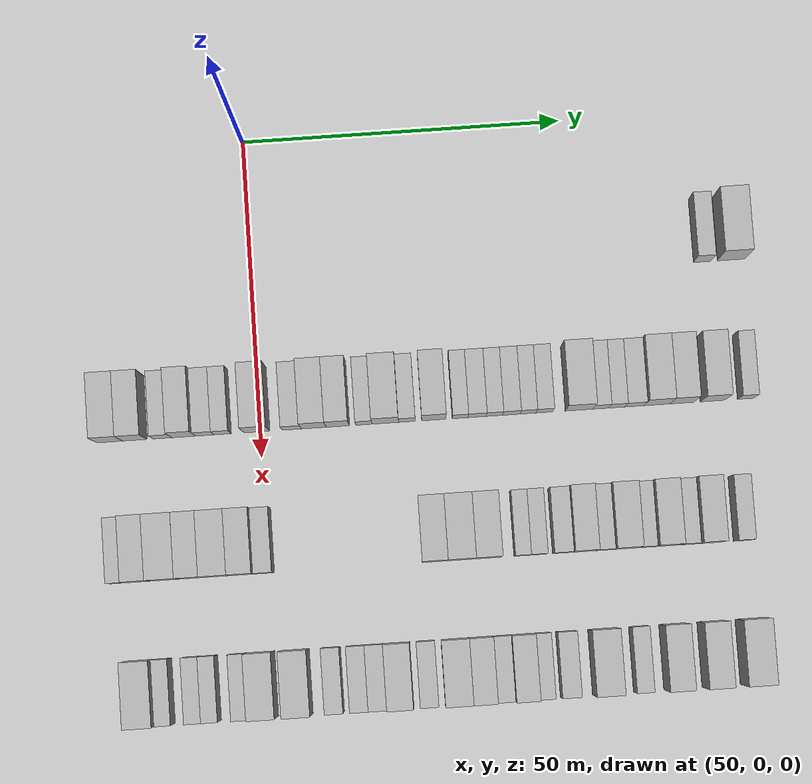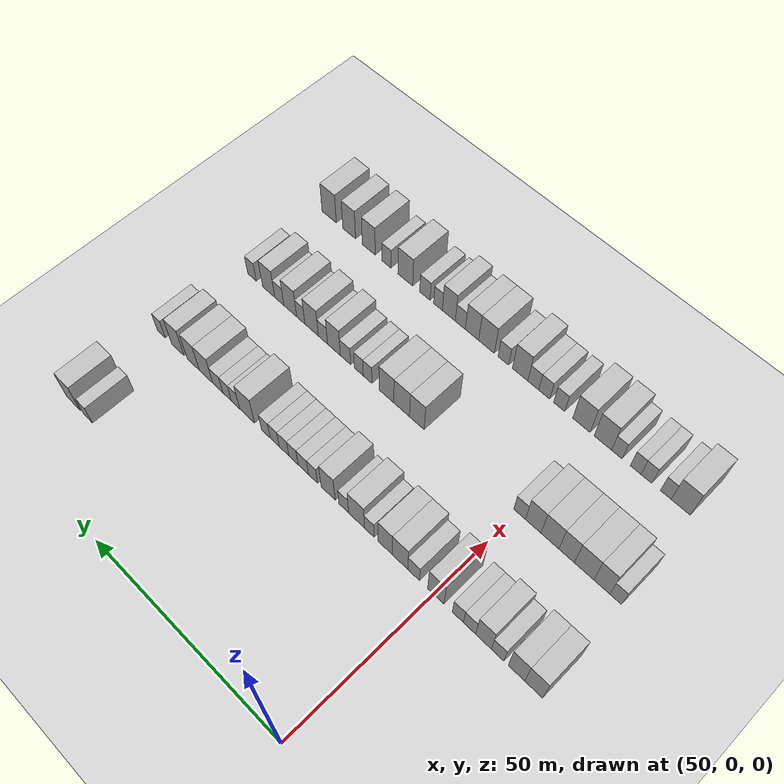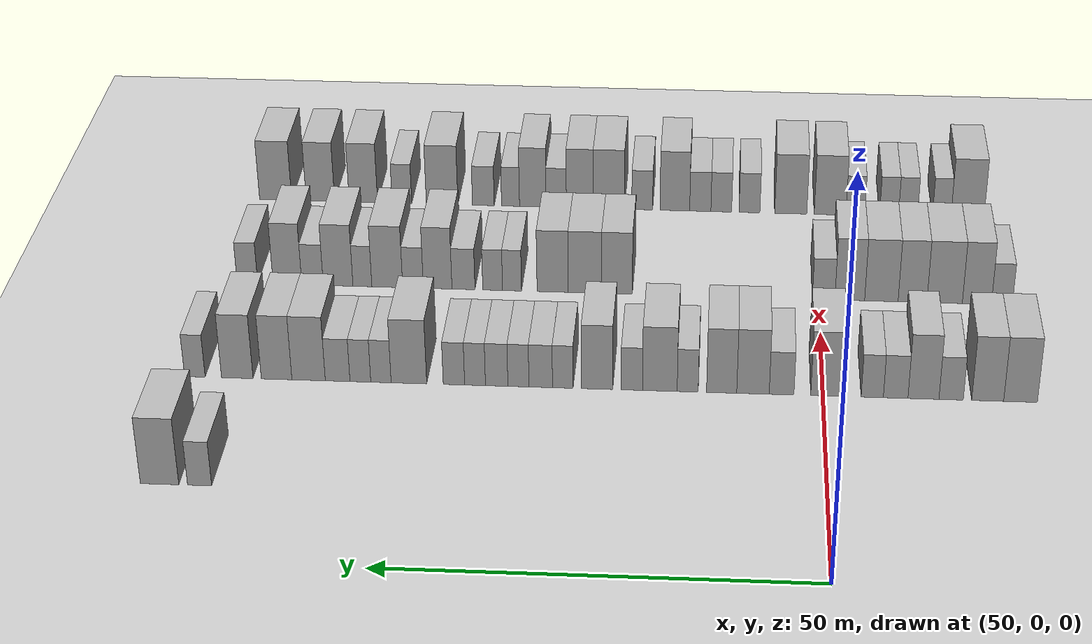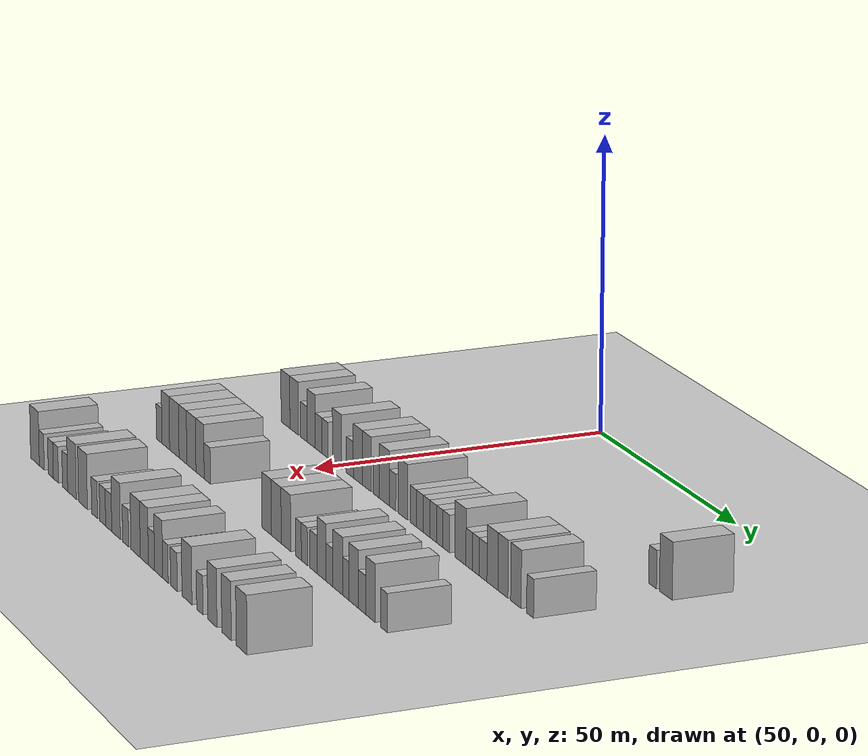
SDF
<sdf version="1.6">
 <world name="default">
  <include>
   <name>ground_plane_2</name>
   <uri>model://HANNAS_ground_plane</uri>
   <pose>100 0 0  0 0 0</pose>
  </include>
  <model name="building_483">
   <static>1</static>
   <pose>69.0000 70.8606 0 0.000000 0.000000 0.000000</pose>
   <link name="link">
    <pose>0 0 3.00 0 0 0</pose>
    <collision name="collision"><geometry><box><size>10.0000 2.7540 6.0000</size></box></geometry></collision>
    <visual name="visual">
     <cast_shadows>0</cast_shadows>
     <geometry><box><size>10.0000 2.7540 6.0000</size></box></geometry>
     <material>
      <script>
       <uri>model://HANNAS_wall/materials/scripts</uri>
       <uri>model://HANNAS_wall/materials/textures</uri>
       <name>vrc/HANNAS_wall</name>
      </script>
     </material>
    </visual>
   </link>
  </model>
  <model name="building_484">
   <static>1</static>
   <pose>69.0000 75.4349 0 0.000000 0.000000 0.000000</pose>
   <link name="link">
    <pose>0 0 4.50 0 0 0</pose>
    <collision name="collision"><geometry><box><size>10.0000 4.3946 9.0000</size></box></geometry></collision>
    <visual name="visual">
     <cast_shadows>0</cast_shadows>
     <geometry><box><size>10.0000 4.3946 9.0000</size></box></geometry>
     <material>
      <script>
       <uri>model://HANNAS_wall/materials/scripts</uri>
       <uri>model://HANNAS_wall/materials/textures</uri>
       <name>vrc/HANNAS_wall</name>
      </script>
     </material>
    </visual>
   </link>
  </model>
  <model name="building_642">
   <static>1</static>
   <pose>91.0000 -23.3865 0 0.000000 0.000000 0.000000</pose>
   <link name="link">
    <pose>0 0 4.50 0 0 0</pose>
    <collision name="collision"><geometry><box><size>10.0000 3.9844 9.0000</size></box></geometry></collision>
    <visual name="visual">
     <cast_shadows>0</cast_shadows>
     <geometry><box><size>10.0000 3.9844 9.0000</size></box></geometry>
     <material>
      <script>
       <uri>model://HANNAS_wall/materials/scripts</uri>
       <uri>model://HANNAS_wall/materials/textures</uri>
       <name>vrc/HANNAS_wall</name>
      </script>
     </material>
    </visual>
   </link>
  </model>
  <model name="building_643">
   <static>1</static>
   <pose>91.0000 -19.5010 0 0.000000 0.000000 0.000000</pose>
   <link name="link">
    <pose>0 0 4.50 0 0 0</pose>
    <collision name="collision"><geometry><box><size>10.0000 3.7867 9.0000</size></box></geometry></collision>
    <visual name="visual">
     <cast_shadows>0</cast_shadows>
     <geometry><box><size>10.0000 3.7867 9.0000</size></box></geometry>
     <material>
      <script>
       <uri>model://HANNAS_wall/materials/scripts</uri>
       <uri>model://HANNAS_wall/materials/textures</uri>
       <name>vrc/HANNAS_wall</name>
      </script>
     </material>
    </visual>
   </link>
  </model>
  <model name="building_644">
   <static>1</static>
   <pose>91.0000 -15.1635 0 0.000000 0.000000 0.000000</pose>
   <link name="link">
    <pose>0 0 3.00 0 0 0</pose>
    <collision name="collision"><geometry><box><size>10.0000 2.8882 6.0000</size></box></geometry></collision>
    <visual name="visual">
     <cast_shadows>0</cast_shadows>
     <geometry><box><size>10.0000 2.8882 6.0000</size></box></geometry>
     <material>
      <script>
       <uri>model://HANNAS_wall/materials/scripts</uri>
       <uri>model://HANNAS_wall/materials/textures</uri>
       <name>vrc/HANNAS_wall</name>
      </script>
     </material>
    </visual>
   </link>
  </model>
  <model name="building_645">
   <static>1</static>
   <pose>91.0000 -11.8799 0 0.000000 0.000000 0.000000</pose>
   <link name="link">
    <pose>0 0 4.50 0 0 0</pose>
    <collision name="collision"><geometry><box><size>10.0000 3.6791 9.0000</size></box></geometry></collision>
    <visual name="visual">
     <cast_shadows>0</cast_shadows>
     <geometry><box><size>10.0000 3.6791 9.0000</size></box></geometry>
     <material>
      <script>
       <uri>model://HANNAS_wall/materials/scripts</uri>
       <uri>model://HANNAS_wall/materials/textures</uri>
       <name>vrc/HANNAS_wall</name>
      </script>
     </material>
    </visual>
   </link>
  </model>
  <model name="building_646">
   <static>1</static>
   <pose>91.0000 -8.5792 0 0.000000 0.000000 0.000000</pose>
   <link name="link">
    <pose>0 0 3.00 0 0 0</pose>
    <collision name="collision"><geometry><box><size>10.0000 2.9222 6.0000</size></box></geometry></collision>
    <visual name="visual">
     <cast_shadows>0</cast_shadows>
     <geometry><box><size>10.0000 2.9222 6.0000</size></box></geometry>
     <material>
      <script>
       <uri>model://HANNAS_wall/materials/scripts</uri>
       <uri>model://HANNAS_wall/materials/textures</uri>
       <name>vrc/HANNAS_wall</name>
      </script>
     </material>
    </visual>
   </link>
  </model>
  <model name="building_647">
   <static>1</static>
   <pose>91.0000 -5.7963 0 0.000000 0.000000 0.000000</pose>
   <link name="link">
    <pose>0 0 3.00 0 0 0</pose>
    <collision name="collision"><geometry><box><size>10.0000 2.6437 6.0000</size></box></geometry></collision>
    <visual name="visual">
     <cast_shadows>0</cast_shadows>
     <geometry><box><size>10.0000 2.6437 6.0000</size></box></geometry>
     <material>
      <script>
       <uri>model://HANNAS_wall/materials/scripts</uri>
       <uri>model://HANNAS_wall/materials/textures</uri>
       <name>vrc/HANNAS_wall</name>
      </script>
     </material>
    </visual>
   </link>
  </model>
  <model name="building_648">
   <static>1</static>
   <pose>91.0000 -0.4701 0 0.000000 0.000000 0.000000</pose>
   <link name="link">
    <pose>0 0 4.50 0 0 0</pose>
    <collision name="collision"><geometry><box><size>10.0000 4.0087 9.0000</size></box></geometry></collision>
    <visual name="visual">
     <cast_shadows>0</cast_shadows>
     <geometry><box><size>10.0000 4.0087 9.0000</size></box></geometry>
     <material>
      <script>
       <uri>model://HANNAS_wall/materials/scripts</uri>
       <uri>model://HANNAS_wall/materials/textures</uri>
       <name>vrc/HANNAS_wall</name>
      </script>
     </material>
    </visual>
   </link>
  </model>
  <model name="building_649">
   <static>1</static>
   <pose>91.0000 5.0111 0 0.000000 0.000000 0.000000</pose>
   <link name="link">
    <pose>0 0 3.00 0 0 0</pose>
    <collision name="collision"><geometry><box><size>10.0000 2.9537 6.0000</size></box></geometry></collision>
    <visual name="visual">
     <cast_shadows>0</cast_shadows>
     <geometry><box><size>10.0000 2.9537 6.0000</size></box></geometry>
     <material>
      <script>
       <uri>model://HANNAS_wall/materials/scripts</uri>
       <uri>model://HANNAS_wall/materials/textures</uri>
       <name>vrc/HANNAS_wall</name>
      </script>
     </material>
    </visual>
   </link>
  </model>
  <model name="building_650">
   <static>1</static>
   <pose>91.0000 8.4296 0 0.000000 0.000000 0.000000</pose>
   <link name="link">
    <pose>0 0 4.50 0 0 0</pose>
    <collision name="collision"><geometry><box><size>10.0000 3.8834 9.0000</size></box></geometry></collision>
    <visual name="visual">
     <cast_shadows>0</cast_shadows>
     <geometry><box><size>10.0000 3.8834 9.0000</size></box></geometry>
     <material>
      <script>
       <uri>model://HANNAS_wall/materials/scripts</uri>
       <uri>model://HANNAS_wall/materials/textures</uri>
       <name>vrc/HANNAS_wall</name>
      </script>
     </material>
    </visual>
   </link>
  </model>
  <model name="building_651">
   <static>1</static>
   <pose>91.0000 12.1762 0 0.000000 0.000000 0.000000</pose>
   <link name="link">
    <pose>0 0 4.50 0 0 0</pose>
    <collision name="collision"><geometry><box><size>10.0000 3.6097 9.0000</size></box></geometry></collision>
    <visual name="visual">
     <cast_shadows>0</cast_shadows>
     <geometry><box><size>10.0000 3.6097 9.0000</size></box></geometry>
     <material>
      <script>
       <uri>model://HANNAS_wall/materials/scripts</uri>
       <uri>model://HANNAS_wall/materials/textures</uri>
       <name>vrc/HANNAS_wall</name>
      </script>
     </material>
    </visual>
   </link>
  </model>
  <model name="building_652">
   <static>1</static>
   <pose>91.0000 16.2401 0 0.000000 0.000000 0.000000</pose>
   <link name="link">
    <pose>0 0 3.00 0 0 0</pose>
    <collision name="collision"><geometry><box><size>10.0000 2.5182 6.0000</size></box></geometry></collision>
    <visual name="visual">
     <cast_shadows>0</cast_shadows>
     <geometry><box><size>10.0000 2.5182 6.0000</size></box></geometry>
     <material>
      <script>
       <uri>model://HANNAS_wall/materials/scripts</uri>
       <uri>model://HANNAS_wall/materials/textures</uri>
       <name>vrc/HANNAS_wall</name>
      </script>
     </material>
    </visual>
   </link>
  </model>
  <model name="building_653">
   <static>1</static>
   <pose>91.0000 19.5769 0 0.000000 0.000000 0.000000</pose>
   <link name="link">
    <pose>0 0 4.50 0 0 0</pose>
    <collision name="collision"><geometry><box><size>10.0000 4.1554 9.0000</size></box></geometry></collision>
    <visual name="visual">
     <cast_shadows>0</cast_shadows>
     <geometry><box><size>10.0000 4.1554 9.0000</size></box></geometry>
     <material>
      <script>
       <uri>model://HANNAS_wall/materials/scripts</uri>
       <uri>model://HANNAS_wall/materials/textures</uri>
       <name>vrc/HANNAS_wall</name>
      </script>
     </material>
    </visual>
   </link>
  </model>
  <model name="building_654">
   <static>1</static>
   <pose>91.0000 22.9436 0 0.000000 0.000000 0.000000</pose>
   <link name="link">
    <pose>0 0 3.00 0 0 0</pose>
    <collision name="collision"><geometry><box><size>10.0000 2.5779 6.0000</size></box></geometry></collision>
    <visual name="visual">
     <cast_shadows>0</cast_shadows>
     <geometry><box><size>10.0000 2.5779 6.0000</size></box></geometry>
     <material>
      <script>
       <uri>model://HANNAS_wall/materials/scripts</uri>
       <uri>model://HANNAS_wall/materials/textures</uri>
       <name>vrc/HANNAS_wall</name>
      </script>
     </material>
    </visual>
   </link>
  </model>
  <model name="building_655">
   <static>1</static>
   <pose>91.0000 27.1180 0 0.000000 0.000000 0.000000</pose>
   <link name="link">
    <pose>0 0 4.50 0 0 0</pose>
    <collision name="collision"><geometry><box><size>10.0000 3.7708 9.0000</size></box></geometry></collision>
    <visual name="visual">
     <cast_shadows>0</cast_shadows>
     <geometry><box><size>10.0000 3.7708 9.0000</size></box></geometry>
     <material>
      <script>
       <uri>model://HANNAS_wall/materials/scripts</uri>
       <uri>model://HANNAS_wall/materials/textures</uri>
       <name>vrc/HANNAS_wall</name>
      </script>
     </material>
    </visual>
   </link>
  </model>
  <model name="building_656">
   <static>1</static>
   <pose>91.0000 31.2391 0 0.000000 0.000000 0.000000</pose>
   <link name="link">
    <pose>0 0 3.00 0 0 0</pose>
    <collision name="collision"><geometry><box><size>10.0000 2.4715 6.0000</size></box></geometry></collision>
    <visual name="visual">
     <cast_shadows>0</cast_shadows>
     <geometry><box><size>10.0000 2.4715 6.0000</size></box></geometry>
     <material>
      <script>
       <uri>model://HANNAS_wall/materials/scripts</uri>
       <uri>model://HANNAS_wall/materials/textures</uri>
       <name>vrc/HANNAS_wall</name>
      </script>
     </material>
    </visual>
   </link>
  </model>
  <model name="building_657">
   <static>1</static>
   <pose>91.0000 33.8924 0 0.000000 0.000000 0.000000</pose>
   <link name="link">
    <pose>0 0 3.00 0 0 0</pose>
    <collision name="collision"><geometry><box><size>10.0000 2.8350 6.0000</size></box></geometry></collision>
    <visual name="visual">
     <cast_shadows>0</cast_shadows>
     <geometry><box><size>10.0000 2.8350 6.0000</size></box></geometry>
     <material>
      <script>
       <uri>model://HANNAS_wall/materials/scripts</uri>
       <uri>model://HANNAS_wall/materials/textures</uri>
       <name>vrc/HANNAS_wall</name>
      </script>
     </material>
    </visual>
   </link>
  </model>
  <model name="building_658">
   <static>1</static>
   <pose>91.0000 36.5819 0 0.000000 0.000000 0.000000</pose>
   <link name="link">
    <pose>0 0 3.00 0 0 0</pose>
    <collision name="collision"><geometry><box><size>10.0000 2.5441 6.0000</size></box></geometry></collision>
    <visual name="visual">
     <cast_shadows>0</cast_shadows>
     <geometry><box><size>10.0000 2.5441 6.0000</size></box></geometry>
     <material>
      <script>
       <uri>model://HANNAS_wall/materials/scripts</uri>
       <uri>model://HANNAS_wall/materials/textures</uri>
       <name>vrc/HANNAS_wall</name>
      </script>
     </material>
    </visual>
   </link>
  </model>
  <model name="building_659">
   <static>1</static>
   <pose>91.0000 39.2064 0 0.000000 0.000000 0.000000</pose>
   <link name="link">
    <pose>0 0 3.00 0 0 0</pose>
    <collision name="collision"><geometry><box><size>10.0000 2.7049 6.0000</size></box></geometry></collision>
    <visual name="visual">
     <cast_shadows>0</cast_shadows>
     <geometry><box><size>10.0000 2.7049 6.0000</size></box></geometry>
     <material>
      <script>
       <uri>model://HANNAS_wall/materials/scripts</uri>
       <uri>model://HANNAS_wall/materials/textures</uri>
       <name>vrc/HANNAS_wall</name>
      </script>
     </material>
    </visual>
   </link>
  </model>
  <model name="building_660">
   <static>1</static>
   <pose>91.0000 41.8150 0 0.000000 0.000000 0.000000</pose>
   <link name="link">
    <pose>0 0 3.00 0 0 0</pose>
    <collision name="collision"><geometry><box><size>10.0000 2.5125 6.0000</size></box></geometry></collision>
    <visual name="visual">
     <cast_shadows>0</cast_shadows>
     <geometry><box><size>10.0000 2.5125 6.0000</size></box></geometry>
     <material>
      <script>
       <uri>model://HANNAS_wall/materials/scripts</uri>
       <uri>model://HANNAS_wall/materials/textures</uri>
       <name>vrc/HANNAS_wall</name>
      </script>
     </material>
    </visual>
   </link>
  </model>
  <model name="building_661">
   <static>1</static>
   <pose>91.0000 44.3664 0 0.000000 0.000000 0.000000</pose>
   <link name="link">
    <pose>0 0 3.00 0 0 0</pose>
    <collision name="collision"><geometry><box><size>10.0000 2.5903 6.0000</size></box></geometry></collision>
    <visual name="visual">
     <cast_shadows>0</cast_shadows>
     <geometry><box><size>10.0000 2.5903 6.0000</size></box></geometry>
     <material>
      <script>
       <uri>model://HANNAS_wall/materials/scripts</uri>
       <uri>model://HANNAS_wall/materials/textures</uri>
       <name>vrc/HANNAS_wall</name>
      </script>
     </material>
    </visual>
   </link>
  </model>
  <model name="building_662">
   <static>1</static>
   <pose>91.0000 49.8170 0 0.000000 0.000000 0.000000</pose>
   <link name="link">
    <pose>0 0 4.50 0 0 0</pose>
    <collision name="collision"><geometry><box><size>10.0000 4.3110 9.0000</size></box></geometry></collision>
    <visual name="visual">
     <cast_shadows>0</cast_shadows>
     <geometry><box><size>10.0000 4.3110 9.0000</size></box></geometry>
     <material>
      <script>
       <uri>model://HANNAS_wall/materials/scripts</uri>
       <uri>model://HANNAS_wall/materials/textures</uri>
       <name>vrc/HANNAS_wall</name>
      </script>
     </material>
    </visual>
   </link>
  </model>
  <model name="building_663">
   <static>1</static>
   <pose>91.0000 53.2085 0 0.000000 0.000000 0.000000</pose>
   <link name="link">
    <pose>0 0 3.00 0 0 0</pose>
    <collision name="collision"><geometry><box><size>10.0000 2.4719 6.0000</size></box></geometry></collision>
    <visual name="visual">
     <cast_shadows>0</cast_shadows>
     <geometry><box><size>10.0000 2.4719 6.0000</size></box></geometry>
     <material>
      <script>
       <uri>model://HANNAS_wall/materials/scripts</uri>
       <uri>model://HANNAS_wall/materials/textures</uri>
       <name>vrc/HANNAS_wall</name>
      </script>
     </material>
    </visual>
   </link>
  </model>
  <model name="building_664">
   <static>1</static>
   <pose>91.0000 55.7061 0 0.000000 0.000000 0.000000</pose>
   <link name="link">
    <pose>0 0 3.00 0 0 0</pose>
    <collision name="collision"><geometry><box><size>10.0000 2.5235 6.0000</size></box></geometry></collision>
    <visual name="visual">
     <cast_shadows>0</cast_shadows>
     <geometry><box><size>10.0000 2.5235 6.0000</size></box></geometry>
     <material>
      <script>
       <uri>model://HANNAS_wall/materials/scripts</uri>
       <uri>model://HANNAS_wall/materials/textures</uri>
       <name>vrc/HANNAS_wall</name>
      </script>
     </material>
    </visual>
   </link>
  </model>
  <model name="building_665">
   <static>1</static>
   <pose>91.0000 58.4654 0 0.000000 0.000000 0.000000</pose>
   <link name="link">
    <pose>0 0 3.00 0 0 0</pose>
    <collision name="collision"><geometry><box><size>10.0000 2.9950 6.0000</size></box></geometry></collision>
    <visual name="visual">
     <cast_shadows>0</cast_shadows>
     <geometry><box><size>10.0000 2.9950 6.0000</size></box></geometry>
     <material>
      <script>
       <uri>model://HANNAS_wall/materials/scripts</uri>
       <uri>model://HANNAS_wall/materials/textures</uri>
       <name>vrc/HANNAS_wall</name>
      </script>
     </material>
    </visual>
   </link>
  </model>
  <model name="building_666">
   <static>1</static>
   <pose>91.0000 61.9948 0 0.000000 0.000000 0.000000</pose>
   <link name="link">
    <pose>0 0 4.50 0 0 0</pose>
    <collision name="collision"><geometry><box><size>10.0000 4.0639 9.0000</size></box></geometry></collision>
    <visual name="visual">
     <cast_shadows>0</cast_shadows>
     <geometry><box><size>10.0000 4.0639 9.0000</size></box></geometry>
     <material>
      <script>
       <uri>model://HANNAS_wall/materials/scripts</uri>
       <uri>model://HANNAS_wall/materials/textures</uri>
       <name>vrc/HANNAS_wall</name>
      </script>
     </material>
    </visual>
   </link>
  </model>
  <model name="building_667">
   <static>1</static>
   <pose>91.0000 65.8891 0 0.000000 0.000000 0.000000</pose>
   <link name="link">
    <pose>0 0 4.50 0 0 0</pose>
    <collision name="collision"><geometry><box><size>10.0000 3.7247 9.0000</size></box></geometry></collision>
    <visual name="visual">
     <cast_shadows>0</cast_shadows>
     <geometry><box><size>10.0000 3.7247 9.0000</size></box></geometry>
     <material>
      <script>
       <uri>model://HANNAS_wall/materials/scripts</uri>
       <uri>model://HANNAS_wall/materials/textures</uri>
       <name>vrc/HANNAS_wall</name>
      </script>
     </material>
    </visual>
   </link>
  </model>
  <model name="building_668">
   <static>1</static>
   <pose>91.0000 70.6745 0 0.000000 0.000000 0.000000</pose>
   <link name="link">
    <pose>0 0 4.50 0 0 0</pose>
    <collision name="collision"><geometry><box><size>10.0000 3.8462 9.0000</size></box></geometry></collision>
    <visual name="visual">
     <cast_shadows>0</cast_shadows>
     <geometry><box><size>10.0000 3.8462 9.0000</size></box></geometry>
     <material>
      <script>
       <uri>model://HANNAS_wall/materials/scripts</uri>
       <uri>model://HANNAS_wall/materials/textures</uri>
       <name>vrc/HANNAS_wall</name>
      </script>
     </material>
    </visual>
   </link>
  </model>
  <model name="building_669">
   <static>1</static>
   <pose>91.0000 75.8521 0 0.000000 0.000000 0.000000</pose>
   <link name="link">
    <pose>0 0 3.00 0 0 0</pose>
    <collision name="collision"><geometry><box><size>10.0000 2.5089 6.0000</size></box></geometry></collision>
    <visual name="visual">
     <cast_shadows>0</cast_shadows>
     <geometry><box><size>10.0000 2.5089 6.0000</size></box></geometry>
     <material>
      <script>
       <uri>model://HANNAS_wall/materials/scripts</uri>
       <uri>model://HANNAS_wall/materials/textures</uri>
       <name>vrc/HANNAS_wall</name>
      </script>
     </material>
    </visual>
   </link>
  </model>
  <model name="building_835">
   <static>1</static>
   <pose>113.0000 -23.1060 0 0.000000 0.000000 0.000000</pose>
   <link name="link">
    <pose>0 0 3.00 0 0 0</pose>
    <collision name="collision"><geometry><box><size>10.0000 2.6447 6.0000</size></box></geometry></collision>
    <visual name="visual">
     <cast_shadows>0</cast_shadows>
     <geometry><box><size>10.0000 2.6447 6.0000</size></box></geometry>
     <material>
      <script>
       <uri>model://HANNAS_wall/materials/scripts</uri>
       <uri>model://HANNAS_wall/materials/textures</uri>
       <name>vrc/HANNAS_wall</name>
      </script>
     </material>
    </visual>
   </link>
  </model>
  <model name="building_836">
   <static>1</static>
   <pose>113.0000 -19.9465 0 0.000000 0.000000 0.000000</pose>
   <link name="link">
    <pose>0 0 4.50 0 0 0</pose>
    <collision name="collision"><geometry><box><size>10.0000 3.6743 9.0000</size></box></geometry></collision>
    <visual name="visual">
     <cast_shadows>0</cast_shadows>
     <geometry><box><size>10.0000 3.6743 9.0000</size></box></geometry>
     <material>
      <script>
       <uri>model://HANNAS_wall/materials/scripts</uri>
       <uri>model://HANNAS_wall/materials/textures</uri>
       <name>vrc/HANNAS_wall</name>
      </script>
     </material>
    </visual>
   </link>
  </model>
  <model name="building_837">
   <static>1</static>
   <pose>113.0000 -15.8705 0 0.000000 0.000000 0.000000</pose>
   <link name="link">
    <pose>0 0 4.50 0 0 0</pose>
    <collision name="collision"><geometry><box><size>10.0000 4.4777 9.0000</size></box></geometry></collision>
    <visual name="visual">
     <cast_shadows>0</cast_shadows>
     <geometry><box><size>10.0000 4.4777 9.0000</size></box></geometry>
     <material>
      <script>
       <uri>model://HANNAS_wall/materials/scripts</uri>
       <uri>model://HANNAS_wall/materials/textures</uri>
       <name>vrc/HANNAS_wall</name>
      </script>
     </material>
    </visual>
   </link>
  </model>
  <model name="building_838">
   <static>1</static>
   <pose>113.0000 -11.8083 0 0.000000 0.000000 0.000000</pose>
   <link name="link">
    <pose>0 0 4.50 0 0 0</pose>
    <collision name="collision"><geometry><box><size>10.0000 3.6465 9.0000</size></box></geometry></collision>
    <visual name="visual">
     <cast_shadows>0</cast_shadows>
     <geometry><box><size>10.0000 3.6465 9.0000</size></box></geometry>
     <material>
      <script>
       <uri>model://HANNAS_wall/materials/scripts</uri>
       <uri>model://HANNAS_wall/materials/textures</uri>
       <name>vrc/HANNAS_wall</name>
      </script>
     </material>
    </visual>
   </link>
  </model>
  <model name="building_839">
   <static>1</static>
   <pose>113.0000 -7.8646 0 0.000000 0.000000 0.000000</pose>
   <link name="link">
    <pose>0 0 4.50 0 0 0</pose>
    <collision name="collision"><geometry><box><size>10.0000 4.2410 9.0000</size></box></geometry></collision>
    <visual name="visual">
     <cast_shadows>0</cast_shadows>
     <geometry><box><size>10.0000 4.2410 9.0000</size></box></geometry>
     <material>
      <script>
       <uri>model://HANNAS_wall/materials/scripts</uri>
       <uri>model://HANNAS_wall/materials/textures</uri>
       <name>vrc/HANNAS_wall</name>
      </script>
     </material>
    </visual>
   </link>
  </model>
  <model name="building_840">
   <static>1</static>
   <pose>113.0000 -3.8533 0 0.000000 0.000000 0.000000</pose>
   <link name="link">
    <pose>0 0 4.50 0 0 0</pose>
    <collision name="collision"><geometry><box><size>10.0000 3.7817 9.0000</size></box></geometry></collision>
    <visual name="visual">
     <cast_shadows>0</cast_shadows>
     <geometry><box><size>10.0000 3.7817 9.0000</size></box></geometry>
     <material>
      <script>
       <uri>model://HANNAS_wall/materials/scripts</uri>
       <uri>model://HANNAS_wall/materials/textures</uri>
       <name>vrc/HANNAS_wall</name>
      </script>
     </material>
    </visual>
   </link>
  </model>
  <model name="building_841">
   <static>1</static>
   <pose>113.0000 -0.5310 0 0.000000 0.000000 0.000000</pose>
   <link name="link">
    <pose>0 0 3.00 0 0 0</pose>
    <collision name="collision"><geometry><box><size>10.0000 2.8629 6.0000</size></box></geometry></collision>
    <visual name="visual">
     <cast_shadows>0</cast_shadows>
     <geometry><box><size>10.0000 2.8629 6.0000</size></box></geometry>
     <material>
      <script>
       <uri>model://HANNAS_wall/materials/scripts</uri>
       <uri>model://HANNAS_wall/materials/textures</uri>
       <name>vrc/HANNAS_wall</name>
      </script>
     </material>
    </visual>
   </link>
  </model>
  <model name="building_842">
   <static>1</static>
   <pose>113.0000 25.8151 0 0.000000 0.000000 0.000000</pose>
   <link name="link">
    <pose>0 0 4.50 0 0 0</pose>
    <collision name="collision"><geometry><box><size>10.0000 3.9431 9.0000</size></box></geometry></collision>
    <visual name="visual">
     <cast_shadows>0</cast_shadows>
     <geometry><box><size>10.0000 3.9431 9.0000</size></box></geometry>
     <material>
      <script>
       <uri>model://HANNAS_wall/materials/scripts</uri>
       <uri>model://HANNAS_wall/materials/textures</uri>
       <name>vrc/HANNAS_wall</name>
      </script>
     </material>
    </visual>
   </link>
  </model>
  <model name="building_843">
   <static>1</static>
   <pose>113.0000 29.9168 0 0.000000 0.000000 0.000000</pose>
   <link name="link">
    <pose>0 0 4.50 0 0 0</pose>
    <collision name="collision"><geometry><box><size>10.0000 4.2604 9.0000</size></box></geometry></collision>
    <visual name="visual">
     <cast_shadows>0</cast_shadows>
     <geometry><box><size>10.0000 4.2604 9.0000</size></box></geometry>
     <material>
      <script>
       <uri>model://HANNAS_wall/materials/scripts</uri>
       <uri>model://HANNAS_wall/materials/textures</uri>
       <name>vrc/HANNAS_wall</name>
      </script>
     </material>
    </visual>
   </link>
  </model>
  <model name="building_844">
   <static>1</static>
   <pose>113.0000 34.0523 0 0.000000 0.000000 0.000000</pose>
   <link name="link">
    <pose>0 0 4.50 0 0 0</pose>
    <collision name="collision"><geometry><box><size>10.0000 4.0107 9.0000</size></box></geometry></collision>
    <visual name="visual">
     <cast_shadows>0</cast_shadows>
     <geometry><box><size>10.0000 4.0107 9.0000</size></box></geometry>
     <material>
      <script>
       <uri>model://HANNAS_wall/materials/scripts</uri>
       <uri>model://HANNAS_wall/materials/textures</uri>
       <name>vrc/HANNAS_wall</name>
      </script>
     </material>
    </visual>
   </link>
  </model>
  <model name="building_845">
   <static>1</static>
   <pose>113.0000 39.2761 0 0.000000 0.000000 0.000000</pose>
   <link name="link">
    <pose>0 0 3.00 0 0 0</pose>
    <collision name="collision"><geometry><box><size>10.0000 2.4368 6.0000</size></box></geometry></collision>
    <visual name="visual">
     <cast_shadows>0</cast_shadows>
     <geometry><box><size>10.0000 2.4368 6.0000</size></box></geometry>
     <material>
      <script>
       <uri>model://HANNAS_wall/materials/scripts</uri>
       <uri>model://HANNAS_wall/materials/textures</uri>
       <name>vrc/HANNAS_wall</name>
      </script>
     </material>
    </visual>
   </link>
  </model>
  <model name="building_846">
   <static>1</static>
   <pose>113.0000 41.7679 0 0.000000 0.000000 0.000000</pose>
   <link name="link">
    <pose>0 0 3.00 0 0 0</pose>
    <collision name="collision"><geometry><box><size>10.0000 2.5469 6.0000</size></box></geometry></collision>
    <visual name="visual">
     <cast_shadows>0</cast_shadows>
     <geometry><box><size>10.0000 2.5469 6.0000</size></box></geometry>
     <material>
      <script>
       <uri>model://HANNAS_wall/materials/scripts</uri>
       <uri>model://HANNAS_wall/materials/textures</uri>
       <name>vrc/HANNAS_wall</name>
      </script>
     </material>
    </visual>
   </link>
  </model>
  <model name="building_847">
   <static>1</static>
   <pose>113.0000 45.5248 0 0.000000 0.000000 0.000000</pose>
   <link name="link">
    <pose>0 0 3.00 0 0 0</pose>
    <collision name="collision"><geometry><box><size>10.0000 2.9670 6.0000</size></box></geometry></collision>
    <visual name="visual">
     <cast_shadows>0</cast_shadows>
     <geometry><box><size>10.0000 2.9670 6.0000</size></box></geometry>
     <material>
      <script>
       <uri>model://HANNAS_wall/materials/scripts</uri>
       <uri>model://HANNAS_wall/materials/textures</uri>
       <name>vrc/HANNAS_wall</name>
      </script>
     </material>
    </visual>
   </link>
  </model>
  <model name="building_848">
   <static>1</static>
   <pose>113.0000 48.8517 0 0.000000 0.000000 0.000000</pose>
   <link name="link">
    <pose>0 0 4.50 0 0 0</pose>
    <collision name="collision"><geometry><box><size>10.0000 3.6868 9.0000</size></box></geometry></collision>
    <visual name="visual">
     <cast_shadows>0</cast_shadows>
     <geometry><box><size>10.0000 3.6868 9.0000</size></box></geometry>
     <material>
      <script>
       <uri>model://HANNAS_wall/materials/scripts</uri>
       <uri>model://HANNAS_wall/materials/textures</uri>
       <name>vrc/HANNAS_wall</name>
      </script>
     </material>
    </visual>
   </link>
  </model>
  <model name="building_849">
   <static>1</static>
   <pose>113.0000 52.0286 0 0.000000 0.000000 0.000000</pose>
   <link name="link">
    <pose>0 0 3.00 0 0 0</pose>
    <collision name="collision"><geometry><box><size>10.0000 2.6670 6.0000</size></box></geometry></collision>
    <visual name="visual">
     <cast_shadows>0</cast_shadows>
     <geometry><box><size>10.0000 2.6670 6.0000</size></box></geometry>
     <material>
      <script>
       <uri>model://HANNAS_wall/materials/scripts</uri>
       <uri>model://HANNAS_wall/materials/textures</uri>
       <name>vrc/HANNAS_wall</name>
      </script>
     </material>
    </visual>
   </link>
  </model>
  <model name="building_850">
   <static>1</static>
   <pose>113.0000 55.3543 0 0.000000 0.000000 0.000000</pose>
   <link name="link">
    <pose>0 0 4.50 0 0 0</pose>
    <collision name="collision"><geometry><box><size>10.0000 3.9843 9.0000</size></box></geometry></collision>
    <visual name="visual">
     <cast_shadows>0</cast_shadows>
     <geometry><box><size>10.0000 3.9843 9.0000</size></box></geometry>
     <material>
      <script>
       <uri>model://HANNAS_wall/materials/scripts</uri>
       <uri>model://HANNAS_wall/materials/textures</uri>
       <name>vrc/HANNAS_wall</name>
      </script>
     </material>
    </visual>
   </link>
  </model>
  <model name="building_851">
   <static>1</static>
   <pose>113.0000 58.5686 0 0.000000 0.000000 0.000000</pose>
   <link name="link">
    <pose>0 0 3.00 0 0 0</pose>
    <collision name="collision"><geometry><box><size>10.0000 2.4444 6.0000</size></box></geometry></collision>
    <visual name="visual">
     <cast_shadows>0</cast_shadows>
     <geometry><box><size>10.0000 2.4444 6.0000</size></box></geometry>
     <material>
      <script>
       <uri>model://HANNAS_wall/materials/scripts</uri>
       <uri>model://HANNAS_wall/materials/textures</uri>
       <name>vrc/HANNAS_wall</name>
      </script>
     </material>
    </visual>
   </link>
  </model>
  <model name="building_852">
   <static>1</static>
   <pose>113.0000 61.7105 0 0.000000 0.000000 0.000000</pose>
   <link name="link">
    <pose>0 0 4.50 0 0 0</pose>
    <collision name="collision"><geometry><box><size>10.0000 3.8395 9.0000</size></box></geometry></collision>
    <visual name="visual">
     <cast_shadows>0</cast_shadows>
     <geometry><box><size>10.0000 3.8395 9.0000</size></box></geometry>
     <material>
      <script>
       <uri>model://HANNAS_wall/materials/scripts</uri>
       <uri>model://HANNAS_wall/materials/textures</uri>
       <name>vrc/HANNAS_wall</name>
      </script>
     </material>
    </visual>
   </link>
  </model>
  <model name="building_853">
   <static>1</static>
   <pose>113.0000 65.0212 0 0.000000 0.000000 0.000000</pose>
   <link name="link">
    <pose>0 0 3.00 0 0 0</pose>
    <collision name="collision"><geometry><box><size>10.0000 2.7819 6.0000</size></box></geometry></collision>
    <visual name="visual">
     <cast_shadows>0</cast_shadows>
     <geometry><box><size>10.0000 2.7819 6.0000</size></box></geometry>
     <material>
      <script>
       <uri>model://HANNAS_wall/materials/scripts</uri>
       <uri>model://HANNAS_wall/materials/textures</uri>
       <name>vrc/HANNAS_wall</name>
      </script>
     </material>
    </visual>
   </link>
  </model>
  <model name="building_854">
   <static>1</static>
   <pose>113.0000 68.2715 0 0.000000 0.000000 0.000000</pose>
   <link name="link">
    <pose>0 0 4.50 0 0 0</pose>
    <collision name="collision"><geometry><box><size>10.0000 3.7187 9.0000</size></box></geometry></collision>
    <visual name="visual">
     <cast_shadows>0</cast_shadows>
     <geometry><box><size>10.0000 3.7187 9.0000</size></box></geometry>
     <material>
      <script>
       <uri>model://HANNAS_wall/materials/scripts</uri>
       <uri>model://HANNAS_wall/materials/textures</uri>
       <name>vrc/HANNAS_wall</name>
      </script>
     </material>
    </visual>
   </link>
  </model>
  <model name="building_855">
   <static>1</static>
   <pose>113.0000 73.4649 0 0.000000 0.000000 0.000000</pose>
   <link name="link">
    <pose>0 0 3.00 0 0 0</pose>
    <collision name="collision"><geometry><box><size>10.0000 2.6682 6.0000</size></box></geometry></collision>
    <visual name="visual">
     <cast_shadows>0</cast_shadows>
     <geometry><box><size>10.0000 2.6682 6.0000</size></box></geometry>
     <material>
      <script>
       <uri>model://HANNAS_wall/materials/scripts</uri>
       <uri>model://HANNAS_wall/materials/textures</uri>
       <name>vrc/HANNAS_wall</name>
      </script>
     </material>
    </visual>
   </link>
  </model>
  <model name="building_1020">
   <static>1</static>
   <pose>135.0000 -20.4038 0 0.000000 0.000000 0.000000</pose>
   <link name="link">
    <pose>0 0 4.50 0 0 0</pose>
    <collision name="collision"><geometry><box><size>10.0000 4.4305 9.0000</size></box></geometry></collision>
    <visual name="visual">
     <cast_shadows>0</cast_shadows>
     <geometry><box><size>10.0000 4.4305 9.0000</size></box></geometry>
     <material>
      <script>
       <uri>model://HANNAS_wall/materials/scripts</uri>
       <uri>model://HANNAS_wall/materials/textures</uri>
       <name>vrc/HANNAS_wall</name>
      </script>
     </material>
    </visual>
   </link>
  </model>
  <model name="building_1021">
   <static>1</static>
   <pose>135.0000 -16.9466 0 0.000000 0.000000 0.000000</pose>
   <link name="link">
    <pose>0 0 3.00 0 0 0</pose>
    <collision name="collision"><geometry><box><size>10.0000 2.4839 6.0000</size></box></geometry></collision>
    <visual name="visual">
     <cast_shadows>0</cast_shadows>
     <geometry><box><size>10.0000 2.4839 6.0000</size></box></geometry>
     <material>
      <script>
       <uri>model://HANNAS_wall/materials/scripts</uri>
       <uri>model://HANNAS_wall/materials/textures</uri>
       <name>vrc/HANNAS_wall</name>
      </script>
     </material>
    </visual>
   </link>
  </model>
  <model name="building_1022">
   <static>1</static>
   <pose>135.0000 -12.4256 0 0.000000 0.000000 0.000000</pose>
   <link name="link">
    <pose>0 0 3.00 0 0 0</pose>
    <collision name="collision"><geometry><box><size>10.0000 2.5581 6.0000</size></box></geometry></collision>
    <visual name="visual">
     <cast_shadows>0</cast_shadows>
     <geometry><box><size>10.0000 2.5581 6.0000</size></box></geometry>
     <material>
      <script>
       <uri>model://HANNAS_wall/materials/scripts</uri>
       <uri>model://HANNAS_wall/materials/textures</uri>
       <name>vrc/HANNAS_wall</name>
      </script>
     </material>
    </visual>
   </link>
  </model>
  <model name="building_1023">
   <static>1</static>
   <pose>135.0000 -9.8753 0 0.000000 0.000000 0.000000</pose>
   <link name="link">
    <pose>0 0 3.00 0 0 0</pose>
    <collision name="collision"><geometry><box><size>10.0000 2.5427 6.0000</size></box></geometry></collision>
    <visual name="visual">
     <cast_shadows>0</cast_shadows>
     <geometry><box><size>10.0000 2.5427 6.0000</size></box></geometry>
     <material>
      <script>
       <uri>model://HANNAS_wall/materials/scripts</uri>
       <uri>model://HANNAS_wall/materials/textures</uri>
       <name>vrc/HANNAS_wall</name>
      </script>
     </material>
    </visual>
   </link>
  </model>
  <model name="building_1024">
   <static>1</static>
   <pose>135.0000 -5.3315 0 0.000000 0.000000 0.000000</pose>
   <link name="link">
    <pose>0 0 3.00 0 0 0</pose>
    <collision name="collision"><geometry><box><size>10.0000 2.5448 6.0000</size></box></geometry></collision>
    <visual name="visual">
     <cast_shadows>0</cast_shadows>
     <geometry><box><size>10.0000 2.5448 6.0000</size></box></geometry>
     <material>
      <script>
       <uri>model://HANNAS_wall/materials/scripts</uri>
       <uri>model://HANNAS_wall/materials/textures</uri>
       <name>vrc/HANNAS_wall</name>
      </script>
     </material>
    </visual>
   </link>
  </model>
  <model name="building_1025">
   <static>1</static>
   <pose>135.0000 -1.9270 0 0.000000 0.000000 0.000000</pose>
   <link name="link">
    <pose>0 0 4.50 0 0 0</pose>
    <collision name="collision"><geometry><box><size>10.0000 4.2641 9.0000</size></box></geometry></collision>
    <visual name="visual">
     <cast_shadows>0</cast_shadows>
     <geometry><box><size>10.0000 4.2641 9.0000</size></box></geometry>
     <material>
      <script>
       <uri>model://HANNAS_wall/materials/scripts</uri>
       <uri>model://HANNAS_wall/materials/textures</uri>
       <name>vrc/HANNAS_wall</name>
      </script>
     </material>
    </visual>
   </link>
  </model>
  <model name="building_1026">
   <static>1</static>
   <pose>135.0000 3.3700 0 0.000000 0.000000 0.000000</pose>
   <link name="link">
    <pose>0 0 4.50 0 0 0</pose>
    <collision name="collision"><geometry><box><size>10.0000 4.3300 9.0000</size></box></geometry></collision>
    <visual name="visual">
     <cast_shadows>0</cast_shadows>
     <geometry><box><size>10.0000 4.3300 9.0000</size></box></geometry>
     <material>
      <script>
       <uri>model://HANNAS_wall/materials/scripts</uri>
       <uri>model://HANNAS_wall/materials/textures</uri>
       <name>vrc/HANNAS_wall</name>
      </script>
     </material>
    </visual>
   </link>
  </model>
  <model name="building_1027">
   <static>1</static>
   <pose>135.0000 8.9456 0 0.000000 0.000000 0.000000</pose>
   <link name="link">
    <pose>0 0 3.00 0 0 0</pose>
    <collision name="collision"><geometry><box><size>10.0000 2.8212 6.0000</size></box></geometry></collision>
    <visual name="visual">
     <cast_shadows>0</cast_shadows>
     <geometry><box><size>10.0000 2.8212 6.0000</size></box></geometry>
     <material>
      <script>
       <uri>model://HANNAS_wall/materials/scripts</uri>
       <uri>model://HANNAS_wall/materials/textures</uri>
       <name>vrc/HANNAS_wall</name>
      </script>
     </material>
    </visual>
   </link>
  </model>
  <model name="building_1028">
   <static>1</static>
   <pose>135.0000 12.7604 0 0.000000 0.000000 0.000000</pose>
   <link name="link">
    <pose>0 0 3.00 0 0 0</pose>
    <collision name="collision"><geometry><box><size>10.0000 2.8084 6.0000</size></box></geometry></collision>
    <visual name="visual">
     <cast_shadows>0</cast_shadows>
     <geometry><box><size>10.0000 2.8084 6.0000</size></box></geometry>
     <material>
      <script>
       <uri>model://HANNAS_wall/materials/scripts</uri>
       <uri>model://HANNAS_wall/materials/textures</uri>
       <name>vrc/HANNAS_wall</name>
      </script>
     </material>
    </visual>
   </link>
  </model>
  <model name="building_1029">
   <static>1</static>
   <pose>135.0000 15.6011 0 0.000000 0.000000 0.000000</pose>
   <link name="link">
    <pose>0 0 3.00 0 0 0</pose>
    <collision name="collision"><geometry><box><size>10.0000 2.8730 6.0000</size></box></geometry></collision>
    <visual name="visual">
     <cast_shadows>0</cast_shadows>
     <geometry><box><size>10.0000 2.8730 6.0000</size></box></geometry>
     <material>
      <script>
       <uri>model://HANNAS_wall/materials/scripts</uri>
       <uri>model://HANNAS_wall/materials/textures</uri>
       <name>vrc/HANNAS_wall</name>
      </script>
     </material>
    </visual>
   </link>
  </model>
  <model name="building_1030">
   <static>1</static>
   <pose>135.0000 19.0490 0 0.000000 0.000000 0.000000</pose>
   <link name="link">
    <pose>0 0 4.50 0 0 0</pose>
    <collision name="collision"><geometry><box><size>10.0000 4.0226 9.0000</size></box></geometry></collision>
    <visual name="visual">
     <cast_shadows>0</cast_shadows>
     <geometry><box><size>10.0000 4.0226 9.0000</size></box></geometry>
     <material>
      <script>
       <uri>model://HANNAS_wall/materials/scripts</uri>
       <uri>model://HANNAS_wall/materials/textures</uri>
       <name>vrc/HANNAS_wall</name>
      </script>
     </material>
    </visual>
   </link>
  </model>
  <model name="building_1031">
   <static>1</static>
   <pose>135.0000 23.4754 0 0.000000 0.000000 0.000000</pose>
   <link name="link">
    <pose>0 0 3.00 0 0 0</pose>
    <collision name="collision"><geometry><box><size>10.0000 2.8303 6.0000</size></box></geometry></collision>
    <visual name="visual">
     <cast_shadows>0</cast_shadows>
     <geometry><box><size>10.0000 2.8303 6.0000</size></box></geometry>
     <material>
      <script>
       <uri>model://HANNAS_wall/materials/scripts</uri>
       <uri>model://HANNAS_wall/materials/textures</uri>
       <name>vrc/HANNAS_wall</name>
      </script>
     </material>
    </visual>
   </link>
  </model>
  <model name="building_1032">
   <static>1</static>
   <pose>135.0000 28.0122 0 0.000000 0.000000 0.000000</pose>
   <link name="link">
    <pose>0 0 4.50 0 0 0</pose>
    <collision name="collision"><geometry><box><size>10.0000 4.2432 9.0000</size></box></geometry></collision>
    <visual name="visual">
     <cast_shadows>0</cast_shadows>
     <geometry><box><size>10.0000 4.2432 9.0000</size></box></geometry>
     <material>
      <script>
       <uri>model://HANNAS_wall/materials/scripts</uri>
       <uri>model://HANNAS_wall/materials/textures</uri>
       <name>vrc/HANNAS_wall</name>
      </script>
     </material>
    </visual>
   </link>
  </model>
  <model name="building_1033">
   <static>1</static>
   <pose>135.0000 31.9598 0 0.000000 0.000000 0.000000</pose>
   <link name="link">
    <pose>0 0 4.50 0 0 0</pose>
    <collision name="collision"><geometry><box><size>10.0000 3.6520 9.0000</size></box></geometry></collision>
    <visual name="visual">
     <cast_shadows>0</cast_shadows>
     <geometry><box><size>10.0000 3.6520 9.0000</size></box></geometry>
     <material>
      <script>
       <uri>model://HANNAS_wall/materials/scripts</uri>
       <uri>model://HANNAS_wall/materials/textures</uri>
       <name>vrc/HANNAS_wall</name>
      </script>
     </material>
    </visual>
   </link>
  </model>
  <model name="building_1034">
   <static>1</static>
   <pose>135.0000 35.1665 0 0.000000 0.000000 0.000000</pose>
   <link name="link">
    <pose>0 0 3.00 0 0 0</pose>
    <collision name="collision"><geometry><box><size>10.0000 2.7614 6.0000</size></box></geometry></collision>
    <visual name="visual">
     <cast_shadows>0</cast_shadows>
     <geometry><box><size>10.0000 2.7614 6.0000</size></box></geometry>
     <material>
      <script>
       <uri>model://HANNAS_wall/materials/scripts</uri>
       <uri>model://HANNAS_wall/materials/textures</uri>
       <name>vrc/HANNAS_wall</name>
      </script>
     </material>
    </visual>
   </link>
  </model>
  <model name="building_1035">
   <static>1</static>
   <pose>135.0000 38.3620 0 0.000000 0.000000 0.000000</pose>
   <link name="link">
    <pose>0 0 4.50 0 0 0</pose>
    <collision name="collision"><geometry><box><size>10.0000 3.6296 9.0000</size></box></geometry></collision>
    <visual name="visual">
     <cast_shadows>0</cast_shadows>
     <geometry><box><size>10.0000 3.6296 9.0000</size></box></geometry>
     <material>
      <script>
       <uri>model://HANNAS_wall/materials/scripts</uri>
       <uri>model://HANNAS_wall/materials/textures</uri>
       <name>vrc/HANNAS_wall</name>
      </script>
     </material>
    </visual>
   </link>
  </model>
  <model name="building_1036">
   <static>1</static>
   <pose>135.0000 41.4018 0 0.000000 0.000000 0.000000</pose>
   <link name="link">
    <pose>0 0 3.00 0 0 0</pose>
    <collision name="collision"><geometry><box><size>10.0000 2.4501 6.0000</size></box></geometry></collision>
    <visual name="visual">
     <cast_shadows>0</cast_shadows>
     <geometry><box><size>10.0000 2.4501 6.0000</size></box></geometry>
     <material>
      <script>
       <uri>model://HANNAS_wall/materials/scripts</uri>
       <uri>model://HANNAS_wall/materials/textures</uri>
       <name>vrc/HANNAS_wall</name>
      </script>
     </material>
    </visual>
   </link>
  </model>
  <model name="building_1037">
   <static>1</static>
   <pose>135.0000 45.1101 0 0.000000 0.000000 0.000000</pose>
   <link name="link">
    <pose>0 0 3.00 0 0 0</pose>
    <collision name="collision"><geometry><box><size>10.0000 2.9666 6.0000</size></box></geometry></collision>
    <visual name="visual">
     <cast_shadows>0</cast_shadows>
     <geometry><box><size>10.0000 2.9666 6.0000</size></box></geometry>
     <material>
      <script>
       <uri>model://HANNAS_wall/materials/scripts</uri>
       <uri>model://HANNAS_wall/materials/textures</uri>
       <name>vrc/HANNAS_wall</name>
      </script>
     </material>
    </visual>
   </link>
  </model>
  <model name="building_1038">
   <static>1</static>
   <pose>135.0000 50.7538 0 0.000000 0.000000 0.000000</pose>
   <link name="link">
    <pose>0 0 4.50 0 0 0</pose>
    <collision name="collision"><geometry><box><size>10.0000 4.3209 9.0000</size></box></geometry></collision>
    <visual name="visual">
     <cast_shadows>0</cast_shadows>
     <geometry><box><size>10.0000 4.3209 9.0000</size></box></geometry>
     <material>
      <script>
       <uri>model://HANNAS_wall/materials/scripts</uri>
       <uri>model://HANNAS_wall/materials/textures</uri>
       <name>vrc/HANNAS_wall</name>
      </script>
     </material>
    </visual>
   </link>
  </model>
  <model name="building_1039">
   <static>1</static>
   <pose>135.0000 56.2558 0 0.000000 0.000000 0.000000</pose>
   <link name="link">
    <pose>0 0 3.00 0 0 0</pose>
    <collision name="collision"><geometry><box><size>10.0000 2.6829 6.0000</size></box></geometry></collision>
    <visual name="visual">
     <cast_shadows>0</cast_shadows>
     <geometry><box><size>10.0000 2.6829 6.0000</size></box></geometry>
     <material>
      <script>
       <uri>model://HANNAS_wall/materials/scripts</uri>
       <uri>model://HANNAS_wall/materials/textures</uri>
       <name>vrc/HANNAS_wall</name>
      </script>
     </material>
    </visual>
   </link>
  </model>
  <model name="building_1040">
   <static>1</static>
   <pose>135.0000 61.5440 0 0.000000 0.000000 0.000000</pose>
   <link name="link">
    <pose>0 0 4.50 0 0 0</pose>
    <collision name="collision"><geometry><box><size>10.0000 3.8936 9.0000</size></box></geometry></collision>
    <visual name="visual">
     <cast_shadows>0</cast_shadows>
     <geometry><box><size>10.0000 3.8936 9.0000</size></box></geometry>
     <material>
      <script>
       <uri>model://HANNAS_wall/materials/scripts</uri>
       <uri>model://HANNAS_wall/materials/textures</uri>
       <name>vrc/HANNAS_wall</name>
      </script>
     </material>
    </visual>
   </link>
  </model>
  <model name="building_1041">
   <static>1</static>
   <pose>135.0000 67.4476 0 0.000000 0.000000 0.000000</pose>
   <link name="link">
    <pose>0 0 4.50 0 0 0</pose>
    <collision name="collision"><geometry><box><size>10.0000 3.9136 9.0000</size></box></geometry></collision>
    <visual name="visual">
     <cast_shadows>0</cast_shadows>
     <geometry><box><size>10.0000 3.9136 9.0000</size></box></geometry>
     <material>
      <script>
       <uri>model://HANNAS_wall/materials/scripts</uri>
       <uri>model://HANNAS_wall/materials/textures</uri>
       <name>vrc/HANNAS_wall</name>
      </script>
     </material>
    </visual>
   </link>
  </model>
  <model name="building_1042">
   <static>1</static>
   <pose>135.0000 73.6125 0 0.000000 0.000000 0.000000</pose>
   <link name="link">
    <pose>0 0 4.50 0 0 0</pose>
    <collision name="collision"><geometry><box><size>10.0000 4.4160 9.0000</size></box></geometry></collision>
    <visual name="visual">
     <cast_shadows>0</cast_shadows>
     <geometry><box><size>10.0000 4.4160 9.0000</size></box></geometry>
     <material>
      <script>
       <uri>model://HANNAS_wall/materials/scripts</uri>
       <uri>model://HANNAS_wall/materials/textures</uri>
       <name>vrc/HANNAS_wall</name>
      </script>
     </material>
    </visual>
   </link>
  </model>
 </world>
</sdf>
